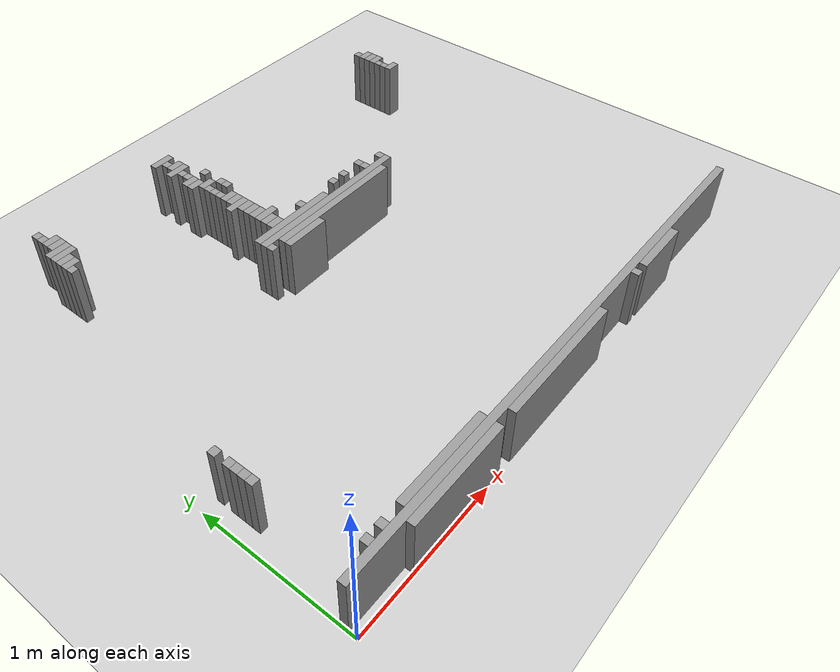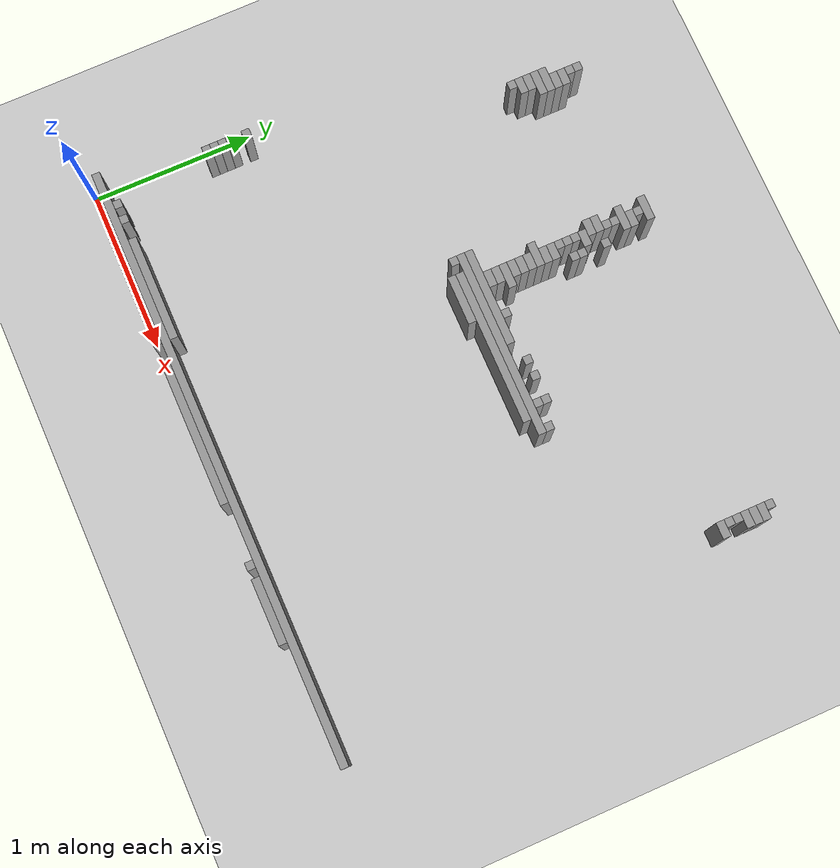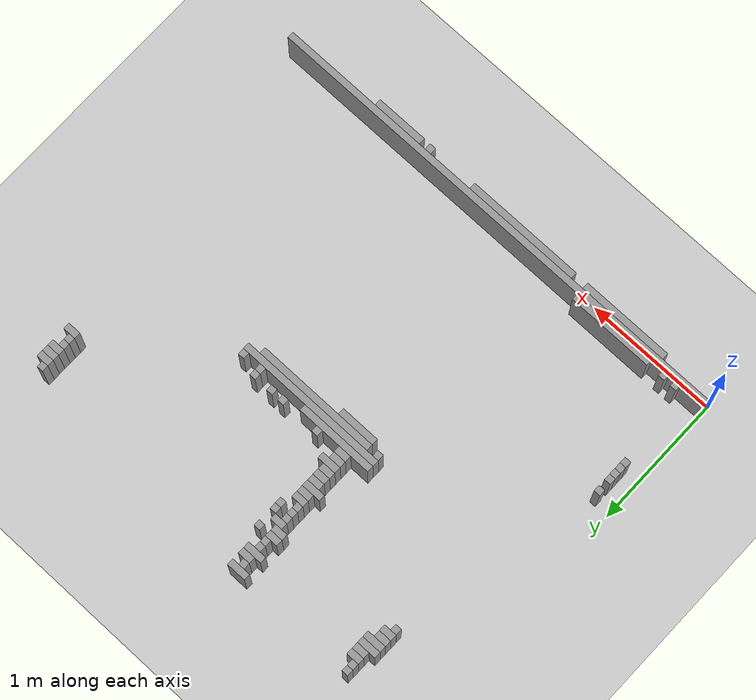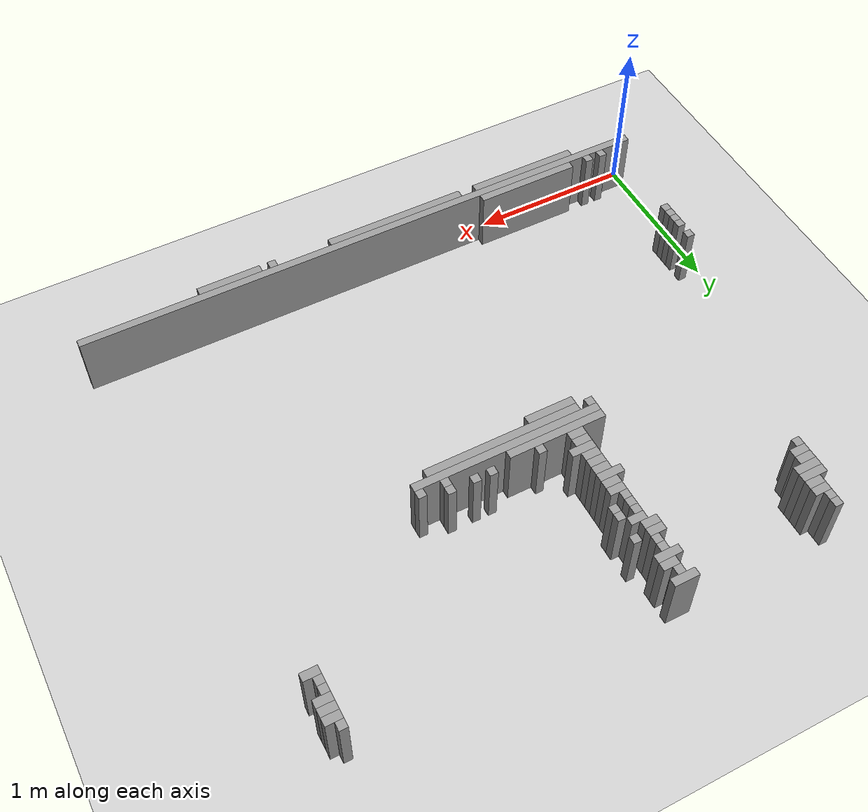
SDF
<sdf version="1.6">
 <world name="parking_mission">
  <include><uri>model://sun</uri></include>
  <include><uri>model://ground_plane</uri></include>
  <model name="wall_196">
   <static>true</static>
   <pose>0.5250 2.9250 0.2000 0 0 0</pose>
   <link name="link">
    <collision name="collision">
     <geometry><box><size>0.0500 0.0500 0.4000</size></box></geometry>
     <surface>
      <contact><ode><kp>20000.0</kp><kd>10.0</kd><max_vel>0.5</max_vel><min_depth>0.001</min_depth></ode></contact>
      <friction><ode><mu>1.0</mu><mu2>1.0</mu2></ode></friction>
     </surface>
    </collision>
    <visual name="visual">
     <geometry><box><size>0.0500 0.0500 0.4000</size></box></geometry>
     <material>
      <script><name>Gazebo/Grey</name><uri>file://media/materials/scripts/gazebo.material</uri></script>
     </material>
    </visual>
   </link>
  </model>
  <model name="wall_197">
   <static>true</static>
   <pose>1.4750 2.9250 0.2000 0 0 0</pose>
   <link name="link">
    <collision name="collision">
     <geometry><box><size>0.1500 0.0500 0.4000</size></box></geometry>
     <surface>
      <contact><ode><kp>20000.0</kp><kd>10.0</kd><max_vel>0.5</max_vel><min_depth>0.001</min_depth></ode></contact>
      <friction><ode><mu>1.0</mu><mu2>1.0</mu2></ode></friction>
     </surface>
    </collision>
    <visual name="visual">
     <geometry><box><size>0.1500 0.0500 0.4000</size></box></geometry>
     <material>
      <script><name>Gazebo/Grey</name><uri>file://media/materials/scripts/gazebo.material</uri></script>
     </material>
    </visual>
   </link>
  </model>
  <model name="wall_200">
   <static>true</static>
   <pose>0.5250 2.8750 0.2000 0 0 0</pose>
   <link name="link">
    <collision name="collision">
     <geometry><box><size>0.0500 0.0500 0.4000</size></box></geometry>
     <surface>
      <contact><ode><kp>20000.0</kp><kd>10.0</kd><max_vel>0.5</max_vel><min_depth>0.001</min_depth></ode></contact>
      <friction><ode><mu>1.0</mu><mu2>1.0</mu2></ode></friction>
     </surface>
    </collision>
    <visual name="visual">
     <geometry><box><size>0.0500 0.0500 0.4000</size></box></geometry>
     <material>
      <script><name>Gazebo/Grey</name><uri>file://media/materials/scripts/gazebo.material</uri></script>
     </material>
    </visual>
   </link>
  </model>
  <model name="wall_201">
   <static>true</static>
   <pose>1.4750 2.8750 0.2000 0 0 0</pose>
   <link name="link">
    <collision name="collision">
     <geometry><box><size>0.0500 0.0500 0.4000</size></box></geometry>
     <surface>
      <contact><ode><kp>20000.0</kp><kd>10.0</kd><max_vel>0.5</max_vel><min_depth>0.001</min_depth></ode></contact>
      <friction><ode><mu>1.0</mu><mu2>1.0</mu2></ode></friction>
     </surface>
    </collision>
    <visual name="visual">
     <geometry><box><size>0.0500 0.0500 0.4000</size></box></geometry>
     <material>
      <script><name>Gazebo/Grey</name><uri>file://media/materials/scripts/gazebo.material</uri></script>
     </material>
    </visual>
   </link>
  </model>
  <model name="wall_205">
   <static>true</static>
   <pose>0.5500 2.8250 0.2000 0 0 0</pose>
   <link name="link">
    <collision name="collision">
     <geometry><box><size>0.1000 0.0500 0.4000</size></box></geometry>
     <surface>
      <contact><ode><kp>20000.0</kp><kd>10.0</kd><max_vel>0.5</max_vel><min_depth>0.001</min_depth></ode></contact>
      <friction><ode><mu>1.0</mu><mu2>1.0</mu2></ode></friction>
     </surface>
    </collision>
    <visual name="visual">
     <geometry><box><size>0.1000 0.0500 0.4000</size></box></geometry>
     <material>
      <script><name>Gazebo/Grey</name><uri>file://media/materials/scripts/gazebo.material</uri></script>
     </material>
    </visual>
   </link>
  </model>
  <model name="wall_206">
   <static>true</static>
   <pose>1.5000 2.8250 0.2000 0 0 0</pose>
   <link name="link">
    <collision name="collision">
     <geometry><box><size>0.1000 0.0500 0.4000</size></box></geometry>
     <surface>
      <contact><ode><kp>20000.0</kp><kd>10.0</kd><max_vel>0.5</max_vel><min_depth>0.001</min_depth></ode></contact>
      <friction><ode><mu>1.0</mu><mu2>1.0</mu2></ode></friction>
     </surface>
    </collision>
    <visual name="visual">
     <geometry><box><size>0.1000 0.0500 0.4000</size></box></geometry>
     <material>
      <script><name>Gazebo/Grey</name><uri>file://media/materials/scripts/gazebo.material</uri></script>
     </material>
    </visual>
   </link>
  </model>
  <model name="wall_207">
   <static>true</static>
   <pose>3.3250 2.8250 0.2000 0 0 0</pose>
   <link name="link">
    <collision name="collision">
     <geometry><box><size>0.0500 0.0500 0.4000</size></box></geometry>
     <surface>
      <contact><ode><kp>20000.0</kp><kd>10.0</kd><max_vel>0.5</max_vel><min_depth>0.001</min_depth></ode></contact>
      <friction><ode><mu>1.0</mu><mu2>1.0</mu2></ode></friction>
     </surface>
    </collision>
    <visual name="visual">
     <geometry><box><size>0.0500 0.0500 0.4000</size></box></geometry>
     <material>
      <script><name>Gazebo/Grey</name><uri>file://media/materials/scripts/gazebo.material</uri></script>
     </material>
    </visual>
   </link>
  </model>
  <model name="wall_211">
   <static>true</static>
   <pose>0.5500 2.7750 0.2000 0 0 0</pose>
   <link name="link">
    <collision name="collision">
     <geometry><box><size>0.1000 0.0500 0.4000</size></box></geometry>
     <surface>
      <contact><ode><kp>20000.0</kp><kd>10.0</kd><max_vel>0.5</max_vel><min_depth>0.001</min_depth></ode></contact>
      <friction><ode><mu>1.0</mu><mu2>1.0</mu2></ode></friction>
     </surface>
    </collision>
    <visual name="visual">
     <geometry><box><size>0.1000 0.0500 0.4000</size></box></geometry>
     <material>
      <script><name>Gazebo/Grey</name><uri>file://media/materials/scripts/gazebo.material</uri></script>
     </material>
    </visual>
   </link>
  </model>
  <model name="wall_212">
   <static>true</static>
   <pose>1.4750 2.7750 0.2000 0 0 0</pose>
   <link name="link">
    <collision name="collision">
     <geometry><box><size>0.1500 0.0500 0.4000</size></box></geometry>
     <surface>
      <contact><ode><kp>20000.0</kp><kd>10.0</kd><max_vel>0.5</max_vel><min_depth>0.001</min_depth></ode></contact>
      <friction><ode><mu>1.0</mu><mu2>1.0</mu2></ode></friction>
     </surface>
    </collision>
    <visual name="visual">
     <geometry><box><size>0.1500 0.0500 0.4000</size></box></geometry>
     <material>
      <script><name>Gazebo/Grey</name><uri>file://media/materials/scripts/gazebo.material</uri></script>
     </material>
    </visual>
   </link>
  </model>
  <model name="wall_213">
   <static>true</static>
   <pose>3.3500 2.7750 0.2000 0 0 0</pose>
   <link name="link">
    <collision name="collision">
     <geometry><box><size>0.1000 0.0500 0.4000</size></box></geometry>
     <surface>
      <contact><ode><kp>20000.0</kp><kd>10.0</kd><max_vel>0.5</max_vel><min_depth>0.001</min_depth></ode></contact>
      <friction><ode><mu>1.0</mu><mu2>1.0</mu2></ode></friction>
     </surface>
    </collision>
    <visual name="visual">
     <geometry><box><size>0.1000 0.0500 0.4000</size></box></geometry>
     <material>
      <script><name>Gazebo/Grey</name><uri>file://media/materials/scripts/gazebo.material</uri></script>
     </material>
    </visual>
   </link>
  </model>
  <model name="wall_216">
   <static>true</static>
   <pose>0.5250 2.7250 0.2000 0 0 0</pose>
   <link name="link">
    <collision name="collision">
     <geometry><box><size>0.1500 0.0500 0.4000</size></box></geometry>
     <surface>
      <contact><ode><kp>20000.0</kp><kd>10.0</kd><max_vel>0.5</max_vel><min_depth>0.001</min_depth></ode></contact>
      <friction><ode><mu>1.0</mu><mu2>1.0</mu2></ode></friction>
     </surface>
    </collision>
    <visual name="visual">
     <geometry><box><size>0.1500 0.0500 0.4000</size></box></geometry>
     <material>
      <script><name>Gazebo/Grey</name><uri>file://media/materials/scripts/gazebo.material</uri></script>
     </material>
    </visual>
   </link>
  </model>
  <model name="wall_217">
   <static>true</static>
   <pose>1.4750 2.7250 0.2000 0 0 0</pose>
   <link name="link">
    <collision name="collision">
     <geometry><box><size>0.0500 0.0500 0.4000</size></box></geometry>
     <surface>
      <contact><ode><kp>20000.0</kp><kd>10.0</kd><max_vel>0.5</max_vel><min_depth>0.001</min_depth></ode></contact>
      <friction><ode><mu>1.0</mu><mu2>1.0</mu2></ode></friction>
     </surface>
    </collision>
    <visual name="visual">
     <geometry><box><size>0.0500 0.0500 0.4000</size></box></geometry>
     <material>
      <script><name>Gazebo/Grey</name><uri>file://media/materials/scripts/gazebo.material</uri></script>
     </material>
    </visual>
   </link>
  </model>
  <model name="wall_218">
   <static>true</static>
   <pose>3.3500 2.7250 0.2000 0 0 0</pose>
   <link name="link">
    <collision name="collision">
     <geometry><box><size>0.1000 0.0500 0.4000</size></box></geometry>
     <surface>
      <contact><ode><kp>20000.0</kp><kd>10.0</kd><max_vel>0.5</max_vel><min_depth>0.001</min_depth></ode></contact>
      <friction><ode><mu>1.0</mu><mu2>1.0</mu2></ode></friction>
     </surface>
    </collision>
    <visual name="visual">
     <geometry><box><size>0.1000 0.0500 0.4000</size></box></geometry>
     <material>
      <script><name>Gazebo/Grey</name><uri>file://media/materials/scripts/gazebo.material</uri></script>
     </material>
    </visual>
   </link>
  </model>
  <model name="wall_221">
   <static>true</static>
   <pose>0.5250 2.6750 0.2000 0 0 0</pose>
   <link name="link">
    <collision name="collision">
     <geometry><box><size>0.1500 0.0500 0.4000</size></box></geometry>
     <surface>
      <contact><ode><kp>20000.0</kp><kd>10.0</kd><max_vel>0.5</max_vel><min_depth>0.001</min_depth></ode></contact>
      <friction><ode><mu>1.0</mu><mu2>1.0</mu2></ode></friction>
     </surface>
    </collision>
    <visual name="visual">
     <geometry><box><size>0.1500 0.0500 0.4000</size></box></geometry>
     <material>
      <script><name>Gazebo/Grey</name><uri>file://media/materials/scripts/gazebo.material</uri></script>
     </material>
    </visual>
   </link>
  </model>
  <model name="wall_222">
   <static>true</static>
   <pose>1.4750 2.6750 0.2000 0 0 0</pose>
   <link name="link">
    <collision name="collision">
     <geometry><box><size>0.0500 0.0500 0.4000</size></box></geometry>
     <surface>
      <contact><ode><kp>20000.0</kp><kd>10.0</kd><max_vel>0.5</max_vel><min_depth>0.001</min_depth></ode></contact>
      <friction><ode><mu>1.0</mu><mu2>1.0</mu2></ode></friction>
     </surface>
    </collision>
    <visual name="visual">
     <geometry><box><size>0.0500 0.0500 0.4000</size></box></geometry>
     <material>
      <script><name>Gazebo/Grey</name><uri>file://media/materials/scripts/gazebo.material</uri></script>
     </material>
    </visual>
   </link>
  </model>
  <model name="wall_223">
   <static>true</static>
   <pose>3.3500 2.6750 0.2000 0 0 0</pose>
   <link name="link">
    <collision name="collision">
     <geometry><box><size>0.1000 0.0500 0.4000</size></box></geometry>
     <surface>
      <contact><ode><kp>20000.0</kp><kd>10.0</kd><max_vel>0.5</max_vel><min_depth>0.001</min_depth></ode></contact>
      <friction><ode><mu>1.0</mu><mu2>1.0</mu2></ode></friction>
     </surface>
    </collision>
    <visual name="visual">
     <geometry><box><size>0.1000 0.0500 0.4000</size></box></geometry>
     <material>
      <script><name>Gazebo/Grey</name><uri>file://media/materials/scripts/gazebo.material</uri></script>
     </material>
    </visual>
   </link>
  </model>
  <model name="wall_226">
   <static>true</static>
   <pose>0.5000 2.6250 0.2000 0 0 0</pose>
   <link name="link">
    <collision name="collision">
     <geometry><box><size>0.1000 0.0500 0.4000</size></box></geometry>
     <surface>
      <contact><ode><kp>20000.0</kp><kd>10.0</kd><max_vel>0.5</max_vel><min_depth>0.001</min_depth></ode></contact>
      <friction><ode><mu>1.0</mu><mu2>1.0</mu2></ode></friction>
     </surface>
    </collision>
    <visual name="visual">
     <geometry><box><size>0.1000 0.0500 0.4000</size></box></geometry>
     <material>
      <script><name>Gazebo/Grey</name><uri>file://media/materials/scripts/gazebo.material</uri></script>
     </material>
    </visual>
   </link>
  </model>
  <model name="wall_227">
   <static>true</static>
   <pose>1.4500 2.6250 0.2000 0 0 0</pose>
   <link name="link">
    <collision name="collision">
     <geometry><box><size>0.1000 0.0500 0.4000</size></box></geometry>
     <surface>
      <contact><ode><kp>20000.0</kp><kd>10.0</kd><max_vel>0.5</max_vel><min_depth>0.001</min_depth></ode></contact>
      <friction><ode><mu>1.0</mu><mu2>1.0</mu2></ode></friction>
     </surface>
    </collision>
    <visual name="visual">
     <geometry><box><size>0.1000 0.0500 0.4000</size></box></geometry>
     <material>
      <script><name>Gazebo/Grey</name><uri>file://media/materials/scripts/gazebo.material</uri></script>
     </material>
    </visual>
   </link>
  </model>
  <model name="wall_228">
   <static>true</static>
   <pose>1.5750 2.6250 0.2000 0 0 0</pose>
   <link name="link">
    <collision name="collision">
     <geometry><box><size>0.0500 0.0500 0.4000</size></box></geometry>
     <surface>
      <contact><ode><kp>20000.0</kp><kd>10.0</kd><max_vel>0.5</max_vel><min_depth>0.001</min_depth></ode></contact>
      <friction><ode><mu>1.0</mu><mu2>1.0</mu2></ode></friction>
     </surface>
    </collision>
    <visual name="visual">
     <geometry><box><size>0.0500 0.0500 0.4000</size></box></geometry>
     <material>
      <script><name>Gazebo/Grey</name><uri>file://media/materials/scripts/gazebo.material</uri></script>
     </material>
    </visual>
   </link>
  </model>
  <model name="wall_229">
   <static>true</static>
   <pose>3.3250 2.6250 0.2000 0 0 0</pose>
   <link name="link">
    <collision name="collision">
     <geometry><box><size>0.0500 0.0500 0.4000</size></box></geometry>
     <surface>
      <contact><ode><kp>20000.0</kp><kd>10.0</kd><max_vel>0.5</max_vel><min_depth>0.001</min_depth></ode></contact>
      <friction><ode><mu>1.0</mu><mu2>1.0</mu2></ode></friction>
     </surface>
    </collision>
    <visual name="visual">
     <geometry><box><size>0.0500 0.0500 0.4000</size></box></geometry>
     <material>
      <script><name>Gazebo/Grey</name><uri>file://media/materials/scripts/gazebo.material</uri></script>
     </material>
    </visual>
   </link>
  </model>
  <model name="wall_232">
   <static>true</static>
   <pose>0.5000 2.5750 0.2000 0 0 0</pose>
   <link name="link">
    <collision name="collision">
     <geometry><box><size>0.1000 0.0500 0.4000</size></box></geometry>
     <surface>
      <contact><ode><kp>20000.0</kp><kd>10.0</kd><max_vel>0.5</max_vel><min_depth>0.001</min_depth></ode></contact>
      <friction><ode><mu>1.0</mu><mu2>1.0</mu2></ode></friction>
     </surface>
    </collision>
    <visual name="visual">
     <geometry><box><size>0.1000 0.0500 0.4000</size></box></geometry>
     <material>
      <script><name>Gazebo/Grey</name><uri>file://media/materials/scripts/gazebo.material</uri></script>
     </material>
    </visual>
   </link>
  </model>
  <model name="wall_233">
   <static>true</static>
   <pose>1.4500 2.5750 0.2000 0 0 0</pose>
   <link name="link">
    <collision name="collision">
     <geometry><box><size>0.1000 0.0500 0.4000</size></box></geometry>
     <surface>
      <contact><ode><kp>20000.0</kp><kd>10.0</kd><max_vel>0.5</max_vel><min_depth>0.001</min_depth></ode></contact>
      <friction><ode><mu>1.0</mu><mu2>1.0</mu2></ode></friction>
     </surface>
    </collision>
    <visual name="visual">
     <geometry><box><size>0.1000 0.0500 0.4000</size></box></geometry>
     <material>
      <script><name>Gazebo/Grey</name><uri>file://media/materials/scripts/gazebo.material</uri></script>
     </material>
    </visual>
   </link>
  </model>
  <model name="wall_234">
   <static>true</static>
   <pose>3.3250 2.5750 0.2000 0 0 0</pose>
   <link name="link">
    <collision name="collision">
     <geometry><box><size>0.0500 0.0500 0.4000</size></box></geometry>
     <surface>
      <contact><ode><kp>20000.0</kp><kd>10.0</kd><max_vel>0.5</max_vel><min_depth>0.001</min_depth></ode></contact>
      <friction><ode><mu>1.0</mu><mu2>1.0</mu2></ode></friction>
     </surface>
    </collision>
    <visual name="visual">
     <geometry><box><size>0.0500 0.0500 0.4000</size></box></geometry>
     <material>
      <script><name>Gazebo/Grey</name><uri>file://media/materials/scripts/gazebo.material</uri></script>
     </material>
    </visual>
   </link>
  </model>
  <model name="wall_237">
   <static>true</static>
   <pose>0.4750 2.5250 0.2000 0 0 0</pose>
   <link name="link">
    <collision name="collision">
     <geometry><box><size>0.0500 0.0500 0.4000</size></box></geometry>
     <surface>
      <contact><ode><kp>20000.0</kp><kd>10.0</kd><max_vel>0.5</max_vel><min_depth>0.001</min_depth></ode></contact>
      <friction><ode><mu>1.0</mu><mu2>1.0</mu2></ode></friction>
     </surface>
    </collision>
    <visual name="visual">
     <geometry><box><size>0.0500 0.0500 0.4000</size></box></geometry>
     <material>
      <script><name>Gazebo/Grey</name><uri>file://media/materials/scripts/gazebo.material</uri></script>
     </material>
    </visual>
   </link>
  </model>
  <model name="wall_238">
   <static>true</static>
   <pose>1.5000 2.5250 0.2000 0 0 0</pose>
   <link name="link">
    <collision name="collision">
     <geometry><box><size>0.1000 0.0500 0.4000</size></box></geometry>
     <surface>
      <contact><ode><kp>20000.0</kp><kd>10.0</kd><max_vel>0.5</max_vel><min_depth>0.001</min_depth></ode></contact>
      <friction><ode><mu>1.0</mu><mu2>1.0</mu2></ode></friction>
     </surface>
    </collision>
    <visual name="visual">
     <geometry><box><size>0.1000 0.0500 0.4000</size></box></geometry>
     <material>
      <script><name>Gazebo/Grey</name><uri>file://media/materials/scripts/gazebo.material</uri></script>
     </material>
    </visual>
   </link>
  </model>
  <model name="wall_239">
   <static>true</static>
   <pose>3.3500 2.5250 0.2000 0 0 0</pose>
   <link name="link">
    <collision name="collision">
     <geometry><box><size>0.1000 0.0500 0.4000</size></box></geometry>
     <surface>
      <contact><ode><kp>20000.0</kp><kd>10.0</kd><max_vel>0.5</max_vel><min_depth>0.001</min_depth></ode></contact>
      <friction><ode><mu>1.0</mu><mu2>1.0</mu2></ode></friction>
     </surface>
    </collision>
    <visual name="visual">
     <geometry><box><size>0.1000 0.0500 0.4000</size></box></geometry>
     <material>
      <script><name>Gazebo/Grey</name><uri>file://media/materials/scripts/gazebo.material</uri></script>
     </material>
    </visual>
   </link>
  </model>
  <model name="wall_242">
   <static>true</static>
   <pose>1.4750 2.4750 0.2000 0 0 0</pose>
   <link name="link">
    <collision name="collision">
     <geometry><box><size>0.0500 0.0500 0.4000</size></box></geometry>
     <surface>
      <contact><ode><kp>20000.0</kp><kd>10.0</kd><max_vel>0.5</max_vel><min_depth>0.001</min_depth></ode></contact>
      <friction><ode><mu>1.0</mu><mu2>1.0</mu2></ode></friction>
     </surface>
    </collision>
    <visual name="visual">
     <geometry><box><size>0.0500 0.0500 0.4000</size></box></geometry>
     <material>
      <script><name>Gazebo/Grey</name><uri>file://media/materials/scripts/gazebo.material</uri></script>
     </material>
    </visual>
   </link>
  </model>
  <model name="wall_243">
   <static>true</static>
   <pose>1.5750 2.4750 0.2000 0 0 0</pose>
   <link name="link">
    <collision name="collision">
     <geometry><box><size>0.0500 0.0500 0.4000</size></box></geometry>
     <surface>
      <contact><ode><kp>20000.0</kp><kd>10.0</kd><max_vel>0.5</max_vel><min_depth>0.001</min_depth></ode></contact>
      <friction><ode><mu>1.0</mu><mu2>1.0</mu2></ode></friction>
     </surface>
    </collision>
    <visual name="visual">
     <geometry><box><size>0.0500 0.0500 0.4000</size></box></geometry>
     <material>
      <script><name>Gazebo/Grey</name><uri>file://media/materials/scripts/gazebo.material</uri></script>
     </material>
    </visual>
   </link>
  </model>
  <model name="wall_246">
   <static>true</static>
   <pose>1.4750 2.4250 0.2000 0 0 0</pose>
   <link name="link">
    <collision name="collision">
     <geometry><box><size>0.0500 0.0500 0.4000</size></box></geometry>
     <surface>
      <contact><ode><kp>20000.0</kp><kd>10.0</kd><max_vel>0.5</max_vel><min_depth>0.001</min_depth></ode></contact>
      <friction><ode><mu>1.0</mu><mu2>1.0</mu2></ode></friction>
     </surface>
    </collision>
    <visual name="visual">
     <geometry><box><size>0.0500 0.0500 0.4000</size></box></geometry>
     <material>
      <script><name>Gazebo/Grey</name><uri>file://media/materials/scripts/gazebo.material</uri></script>
     </material>
    </visual>
   </link>
  </model>
  <model name="wall_247">
   <static>true</static>
   <pose>1.5750 2.4250 0.2000 0 0 0</pose>
   <link name="link">
    <collision name="collision">
     <geometry><box><size>0.0500 0.0500 0.4000</size></box></geometry>
     <surface>
      <contact><ode><kp>20000.0</kp><kd>10.0</kd><max_vel>0.5</max_vel><min_depth>0.001</min_depth></ode></contact>
      <friction><ode><mu>1.0</mu><mu2>1.0</mu2></ode></friction>
     </surface>
    </collision>
    <visual name="visual">
     <geometry><box><size>0.0500 0.0500 0.4000</size></box></geometry>
     <material>
      <script><name>Gazebo/Grey</name><uri>file://media/materials/scripts/gazebo.material</uri></script>
     </material>
    </visual>
   </link>
  </model>
  <model name="wall_250">
   <static>true</static>
   <pose>1.4750 2.3750 0.2000 0 0 0</pose>
   <link name="link">
    <collision name="collision">
     <geometry><box><size>0.0500 0.0500 0.4000</size></box></geometry>
     <surface>
      <contact><ode><kp>20000.0</kp><kd>10.0</kd><max_vel>0.5</max_vel><min_depth>0.001</min_depth></ode></contact>
      <friction><ode><mu>1.0</mu><mu2>1.0</mu2></ode></friction>
     </surface>
    </collision>
    <visual name="visual">
     <geometry><box><size>0.0500 0.0500 0.4000</size></box></geometry>
     <material>
      <script><name>Gazebo/Grey</name><uri>file://media/materials/scripts/gazebo.material</uri></script>
     </material>
    </visual>
   </link>
  </model>
  <model name="wall_253">
   <static>true</static>
   <pose>1.5000 2.3250 0.2000 0 0 0</pose>
   <link name="link">
    <collision name="collision">
     <geometry><box><size>0.1000 0.0500 0.4000</size></box></geometry>
     <surface>
      <contact><ode><kp>20000.0</kp><kd>10.0</kd><max_vel>0.5</max_vel><min_depth>0.001</min_depth></ode></contact>
      <friction><ode><mu>1.0</mu><mu2>1.0</mu2></ode></friction>
     </surface>
    </collision>
    <visual name="visual">
     <geometry><box><size>0.1000 0.0500 0.4000</size></box></geometry>
     <material>
      <script><name>Gazebo/Grey</name><uri>file://media/materials/scripts/gazebo.material</uri></script>
     </material>
    </visual>
   </link>
  </model>
  <model name="wall_256">
   <static>true</static>
   <pose>1.5000 2.2750 0.2000 0 0 0</pose>
   <link name="link">
    <collision name="collision">
     <geometry><box><size>0.1000 0.0500 0.4000</size></box></geometry>
     <surface>
      <contact><ode><kp>20000.0</kp><kd>10.0</kd><max_vel>0.5</max_vel><min_depth>0.001</min_depth></ode></contact>
      <friction><ode><mu>1.0</mu><mu2>1.0</mu2></ode></friction>
     </surface>
    </collision>
    <visual name="visual">
     <geometry><box><size>0.1000 0.0500 0.4000</size></box></geometry>
     <material>
      <script><name>Gazebo/Grey</name><uri>file://media/materials/scripts/gazebo.material</uri></script>
     </material>
    </visual>
   </link>
  </model>
  <model name="wall_259">
   <static>true</static>
   <pose>1.4750 2.2250 0.2000 0 0 0</pose>
   <link name="link">
    <collision name="collision">
     <geometry><box><size>0.1500 0.0500 0.4000</size></box></geometry>
     <surface>
      <contact><ode><kp>20000.0</kp><kd>10.0</kd><max_vel>0.5</max_vel><min_depth>0.001</min_depth></ode></contact>
      <friction><ode><mu>1.0</mu><mu2>1.0</mu2></ode></friction>
     </surface>
    </collision>
    <visual name="visual">
     <geometry><box><size>0.1500 0.0500 0.4000</size></box></geometry>
     <material>
      <script><name>Gazebo/Grey</name><uri>file://media/materials/scripts/gazebo.material</uri></script>
     </material>
    </visual>
   </link>
  </model>
  <model name="wall_263">
   <static>true</static>
   <pose>1.5000 2.1750 0.2000 0 0 0</pose>
   <link name="link">
    <collision name="collision">
     <geometry><box><size>0.1000 0.0500 0.4000</size></box></geometry>
     <surface>
      <contact><ode><kp>20000.0</kp><kd>10.0</kd><max_vel>0.5</max_vel><min_depth>0.001</min_depth></ode></contact>
      <friction><ode><mu>1.0</mu><mu2>1.0</mu2></ode></friction>
     </surface>
    </collision>
    <visual name="visual">
     <geometry><box><size>0.1000 0.0500 0.4000</size></box></geometry>
     <material>
      <script><name>Gazebo/Grey</name><uri>file://media/materials/scripts/gazebo.material</uri></script>
     </material>
    </visual>
   </link>
  </model>
  <model name="wall_266">
   <static>true</static>
   <pose>1.5000 2.1250 0.2000 0 0 0</pose>
   <link name="link">
    <collision name="collision">
     <geometry><box><size>0.1000 0.0500 0.4000</size></box></geometry>
     <surface>
      <contact><ode><kp>20000.0</kp><kd>10.0</kd><max_vel>0.5</max_vel><min_depth>0.001</min_depth></ode></contact>
      <friction><ode><mu>1.0</mu><mu2>1.0</mu2></ode></friction>
     </surface>
    </collision>
    <visual name="visual">
     <geometry><box><size>0.1000 0.0500 0.4000</size></box></geometry>
     <material>
      <script><name>Gazebo/Grey</name><uri>file://media/materials/scripts/gazebo.material</uri></script>
     </material>
    </visual>
   </link>
  </model>
  <model name="wall_269">
   <static>true</static>
   <pose>1.5000 2.0750 0.2000 0 0 0</pose>
   <link name="link">
    <collision name="collision">
     <geometry><box><size>0.1000 0.0500 0.4000</size></box></geometry>
     <surface>
      <contact><ode><kp>20000.0</kp><kd>10.0</kd><max_vel>0.5</max_vel><min_depth>0.001</min_depth></ode></contact>
      <friction><ode><mu>1.0</mu><mu2>1.0</mu2></ode></friction>
     </surface>
    </collision>
    <visual name="visual">
     <geometry><box><size>0.1000 0.0500 0.4000</size></box></geometry>
     <material>
      <script><name>Gazebo/Grey</name><uri>file://media/materials/scripts/gazebo.material</uri></script>
     </material>
    </visual>
   </link>
  </model>
  <model name="wall_272">
   <static>true</static>
   <pose>1.5250 2.0250 0.2000 0 0 0</pose>
   <link name="link">
    <collision name="collision">
     <geometry><box><size>0.1500 0.0500 0.4000</size></box></geometry>
     <surface>
      <contact><ode><kp>20000.0</kp><kd>10.0</kd><max_vel>0.5</max_vel><min_depth>0.001</min_depth></ode></contact>
      <friction><ode><mu>1.0</mu><mu2>1.0</mu2></ode></friction>
     </surface>
    </collision>
    <visual name="visual">
     <geometry><box><size>0.1500 0.0500 0.4000</size></box></geometry>
     <material>
      <script><name>Gazebo/Grey</name><uri>file://media/materials/scripts/gazebo.material</uri></script>
     </material>
    </visual>
   </link>
  </model>
  <model name="wall_275">
   <static>true</static>
   <pose>1.5000 1.9750 0.2000 0 0 0</pose>
   <link name="link">
    <collision name="collision">
     <geometry><box><size>0.1000 0.0500 0.4000</size></box></geometry>
     <surface>
      <contact><ode><kp>20000.0</kp><kd>10.0</kd><max_vel>0.5</max_vel><min_depth>0.001</min_depth></ode></contact>
      <friction><ode><mu>1.0</mu><mu2>1.0</mu2></ode></friction>
     </surface>
    </collision>
    <visual name="visual">
     <geometry><box><size>0.1000 0.0500 0.4000</size></box></geometry>
     <material>
      <script><name>Gazebo/Grey</name><uri>file://media/materials/scripts/gazebo.material</uri></script>
     </material>
    </visual>
   </link>
  </model>
  <model name="wall_279">
   <static>true</static>
   <pose>1.5000 1.9250 0.2000 0 0 0</pose>
   <link name="link">
    <collision name="collision">
     <geometry><box><size>0.1000 0.0500 0.4000</size></box></geometry>
     <surface>
      <contact><ode><kp>20000.0</kp><kd>10.0</kd><max_vel>0.5</max_vel><min_depth>0.001</min_depth></ode></contact>
      <friction><ode><mu>1.0</mu><mu2>1.0</mu2></ode></friction>
     </surface>
    </collision>
    <visual name="visual">
     <geometry><box><size>0.1000 0.0500 0.4000</size></box></geometry>
     <material>
      <script><name>Gazebo/Grey</name><uri>file://media/materials/scripts/gazebo.material</uri></script>
     </material>
    </visual>
   </link>
  </model>
  <model name="wall_280">
   <static>true</static>
   <pose>1.7250 1.9250 0.2000 0 0 0</pose>
   <link name="link">
    <collision name="collision">
     <geometry><box><size>0.0500 0.0500 0.4000</size></box></geometry>
     <surface>
      <contact><ode><kp>20000.0</kp><kd>10.0</kd><max_vel>0.5</max_vel><min_depth>0.001</min_depth></ode></contact>
      <friction><ode><mu>1.0</mu><mu2>1.0</mu2></ode></friction>
     </surface>
    </collision>
    <visual name="visual">
     <geometry><box><size>0.0500 0.0500 0.4000</size></box></geometry>
     <material>
      <script><name>Gazebo/Grey</name><uri>file://media/materials/scripts/gazebo.material</uri></script>
     </material>
    </visual>
   </link>
  </model>
  <model name="wall_281">
   <static>true</static>
   <pose>2.0250 1.9250 0.2000 0 0 0</pose>
   <link name="link">
    <collision name="collision">
     <geometry><box><size>0.0500 0.0500 0.4000</size></box></geometry>
     <surface>
      <contact><ode><kp>20000.0</kp><kd>10.0</kd><max_vel>0.5</max_vel><min_depth>0.001</min_depth></ode></contact>
      <friction><ode><mu>1.0</mu><mu2>1.0</mu2></ode></friction>
     </surface>
    </collision>
    <visual name="visual">
     <geometry><box><size>0.0500 0.0500 0.4000</size></box></geometry>
     <material>
      <script><name>Gazebo/Grey</name><uri>file://media/materials/scripts/gazebo.material</uri></script>
     </material>
    </visual>
   </link>
  </model>
  <model name="wall_282">
   <static>true</static>
   <pose>2.1250 1.9250 0.2000 0 0 0</pose>
   <link name="link">
    <collision name="collision">
     <geometry><box><size>0.0500 0.0500 0.4000</size></box></geometry>
     <surface>
      <contact><ode><kp>20000.0</kp><kd>10.0</kd><max_vel>0.5</max_vel><min_depth>0.001</min_depth></ode></contact>
      <friction><ode><mu>1.0</mu><mu2>1.0</mu2></ode></friction>
     </surface>
    </collision>
    <visual name="visual">
     <geometry><box><size>0.0500 0.0500 0.4000</size></box></geometry>
     <material>
      <script><name>Gazebo/Grey</name><uri>file://media/materials/scripts/gazebo.material</uri></script>
     </material>
    </visual>
   </link>
  </model>
  <model name="wall_283">
   <static>true</static>
   <pose>2.2750 1.9250 0.2000 0 0 0</pose>
   <link name="link">
    <collision name="collision">
     <geometry><box><size>0.0500 0.0500 0.4000</size></box></geometry>
     <surface>
      <contact><ode><kp>20000.0</kp><kd>10.0</kd><max_vel>0.5</max_vel><min_depth>0.001</min_depth></ode></contact>
      <friction><ode><mu>1.0</mu><mu2>1.0</mu2></ode></friction>
     </surface>
    </collision>
    <visual name="visual">
     <geometry><box><size>0.0500 0.0500 0.4000</size></box></geometry>
     <material>
      <script><name>Gazebo/Grey</name><uri>file://media/materials/scripts/gazebo.material</uri></script>
     </material>
    </visual>
   </link>
  </model>
  <model name="wall_286">
   <static>true</static>
   <pose>1.6000 1.8750 0.2000 0 0 0</pose>
   <link name="link">
    <collision name="collision">
     <geometry><box><size>0.6000 0.0500 0.4000</size></box></geometry>
     <surface>
      <contact><ode><kp>20000.0</kp><kd>10.0</kd><max_vel>0.5</max_vel><min_depth>0.001</min_depth></ode></contact>
      <friction><ode><mu>1.0</mu><mu2>1.0</mu2></ode></friction>
     </surface>
    </collision>
    <visual name="visual">
     <geometry><box><size>0.6000 0.0500 0.4000</size></box></geometry>
     <material>
      <script><name>Gazebo/Grey</name><uri>file://media/materials/scripts/gazebo.material</uri></script>
     </material>
    </visual>
   </link>
  </model>
  <model name="wall_287">
   <static>true</static>
   <pose>2.2750 1.8750 0.2000 0 0 0</pose>
   <link name="link">
    <collision name="collision">
     <geometry><box><size>0.0500 0.0500 0.4000</size></box></geometry>
     <surface>
      <contact><ode><kp>20000.0</kp><kd>10.0</kd><max_vel>0.5</max_vel><min_depth>0.001</min_depth></ode></contact>
      <friction><ode><mu>1.0</mu><mu2>1.0</mu2></ode></friction>
     </surface>
    </collision>
    <visual name="visual">
     <geometry><box><size>0.0500 0.0500 0.4000</size></box></geometry>
     <material>
      <script><name>Gazebo/Grey</name><uri>file://media/materials/scripts/gazebo.material</uri></script>
     </material>
    </visual>
   </link>
  </model>
  <model name="wall_288">
   <static>true</static>
   <pose>2.4250 1.8750 0.2000 0 0 0</pose>
   <link name="link">
    <collision name="collision">
     <geometry><box><size>0.0500 0.0500 0.4000</size></box></geometry>
     <surface>
      <contact><ode><kp>20000.0</kp><kd>10.0</kd><max_vel>0.5</max_vel><min_depth>0.001</min_depth></ode></contact>
      <friction><ode><mu>1.0</mu><mu2>1.0</mu2></ode></friction>
     </surface>
    </collision>
    <visual name="visual">
     <geometry><box><size>0.0500 0.0500 0.4000</size></box></geometry>
     <material>
      <script><name>Gazebo/Grey</name><uri>file://media/materials/scripts/gazebo.material</uri></script>
     </material>
    </visual>
   </link>
  </model>
  <model name="wall_292">
   <static>true</static>
   <pose>1.8750 1.8250 0.2000 0 0 0</pose>
   <link name="link">
    <collision name="collision">
     <geometry><box><size>1.1500 0.0500 0.4000</size></box></geometry>
     <surface>
      <contact><ode><kp>20000.0</kp><kd>10.0</kd><max_vel>0.5</max_vel><min_depth>0.001</min_depth></ode></contact>
      <friction><ode><mu>1.0</mu><mu2>1.0</mu2></ode></friction>
     </surface>
    </collision>
    <visual name="visual">
     <geometry><box><size>1.1500 0.0500 0.4000</size></box></geometry>
     <material>
      <script><name>Gazebo/Grey</name><uri>file://media/materials/scripts/gazebo.material</uri></script>
     </material>
    </visual>
   </link>
  </model>
  <model name="wall_295">
   <static>true</static>
   <pose>1.3250 1.7750 0.2000 0 0 0</pose>
   <link name="link">
    <collision name="collision">
     <geometry><box><size>0.0500 0.0500 0.4000</size></box></geometry>
     <surface>
      <contact><ode><kp>20000.0</kp><kd>10.0</kd><max_vel>0.5</max_vel><min_depth>0.001</min_depth></ode></contact>
      <friction><ode><mu>1.0</mu><mu2>1.0</mu2></ode></friction>
     </surface>
    </collision>
    <visual name="visual">
     <geometry><box><size>0.0500 0.0500 0.4000</size></box></geometry>
     <material>
      <script><name>Gazebo/Grey</name><uri>file://media/materials/scripts/gazebo.material</uri></script>
     </material>
    </visual>
   </link>
  </model>
  <model name="wall_296">
   <static>true</static>
   <pose>1.8750 1.7750 0.2000 0 0 0</pose>
   <link name="link">
    <collision name="collision">
     <geometry><box><size>0.9500 0.0500 0.4000</size></box></geometry>
     <surface>
      <contact><ode><kp>20000.0</kp><kd>10.0</kd><max_vel>0.5</max_vel><min_depth>0.001</min_depth></ode></contact>
      <friction><ode><mu>1.0</mu><mu2>1.0</mu2></ode></friction>
     </surface>
    </collision>
    <visual name="visual">
     <geometry><box><size>0.9500 0.0500 0.4000</size></box></geometry>
     <material>
      <script><name>Gazebo/Grey</name><uri>file://media/materials/scripts/gazebo.material</uri></script>
     </material>
    </visual>
   </link>
  </model>
  <model name="wall_299">
   <static>true</static>
   <pose>1.5500 1.7250 0.2000 0 0 0</pose>
   <link name="link">
    <collision name="collision">
     <geometry><box><size>0.3000 0.0500 0.4000</size></box></geometry>
     <surface>
      <contact><ode><kp>20000.0</kp><kd>10.0</kd><max_vel>0.5</max_vel><min_depth>0.001</min_depth></ode></contact>
      <friction><ode><mu>1.0</mu><mu2>1.0</mu2></ode></friction>
     </surface>
    </collision>
    <visual name="visual">
     <geometry><box><size>0.3000 0.0500 0.4000</size></box></geometry>
     <material>
      <script><name>Gazebo/Grey</name><uri>file://media/materials/scripts/gazebo.material</uri></script>
     </material>
    </visual>
   </link>
  </model>
  <model name="wall_336">
   <static>true</static>
   <pose>0.1250 0.9750 0.2000 0 0 0</pose>
   <link name="link">
    <collision name="collision">
     <geometry><box><size>0.0500 0.0500 0.4000</size></box></geometry>
     <surface>
      <contact><ode><kp>20000.0</kp><kd>10.0</kd><max_vel>0.5</max_vel><min_depth>0.001</min_depth></ode></contact>
      <friction><ode><mu>1.0</mu><mu2>1.0</mu2></ode></friction>
     </surface>
    </collision>
    <visual name="visual">
     <geometry><box><size>0.0500 0.0500 0.4000</size></box></geometry>
     <material>
      <script><name>Gazebo/Grey</name><uri>file://media/materials/scripts/gazebo.material</uri></script>
     </material>
    </visual>
   </link>
  </model>
  <model name="wall_342">
   <static>true</static>
   <pose>0.1250 0.8750 0.2000 0 0 0</pose>
   <link name="link">
    <collision name="collision">
     <geometry><box><size>0.0500 0.0500 0.4000</size></box></geometry>
     <surface>
      <contact><ode><kp>20000.0</kp><kd>10.0</kd><max_vel>0.5</max_vel><min_depth>0.001</min_depth></ode></contact>
      <friction><ode><mu>1.0</mu><mu2>1.0</mu2></ode></friction>
     </surface>
    </collision>
    <visual name="visual">
     <geometry><box><size>0.0500 0.0500 0.4000</size></box></geometry>
     <material>
      <script><name>Gazebo/Grey</name><uri>file://media/materials/scripts/gazebo.material</uri></script>
     </material>
    </visual>
   </link>
  </model>
  <model name="wall_344">
   <static>true</static>
   <pose>0.1250 0.8250 0.2000 0 0 0</pose>
   <link name="link">
    <collision name="collision">
     <geometry><box><size>0.0500 0.0500 0.4000</size></box></geometry>
     <surface>
      <contact><ode><kp>20000.0</kp><kd>10.0</kd><max_vel>0.5</max_vel><min_depth>0.001</min_depth></ode></contact>
      <friction><ode><mu>1.0</mu><mu2>1.0</mu2></ode></friction>
     </surface>
    </collision>
    <visual name="visual">
     <geometry><box><size>0.0500 0.0500 0.4000</size></box></geometry>
     <material>
      <script><name>Gazebo/Grey</name><uri>file://media/materials/scripts/gazebo.material</uri></script>
     </material>
    </visual>
   </link>
  </model>
  <model name="wall_347">
   <static>true</static>
   <pose>0.1250 0.7750 0.2000 0 0 0</pose>
   <link name="link">
    <collision name="collision">
     <geometry><box><size>0.0500 0.0500 0.4000</size></box></geometry>
     <surface>
      <contact><ode><kp>20000.0</kp><kd>10.0</kd><max_vel>0.5</max_vel><min_depth>0.001</min_depth></ode></contact>
      <friction><ode><mu>1.0</mu><mu2>1.0</mu2></ode></friction>
     </surface>
    </collision>
    <visual name="visual">
     <geometry><box><size>0.0500 0.0500 0.4000</size></box></geometry>
     <material>
      <script><name>Gazebo/Grey</name><uri>file://media/materials/scripts/gazebo.material</uri></script>
     </material>
    </visual>
   </link>
  </model>
  <model name="wall_350">
   <static>true</static>
   <pose>0.1250 0.7250 0.2000 0 0 0</pose>
   <link name="link">
    <collision name="collision">
     <geometry><box><size>0.0500 0.0500 0.4000</size></box></geometry>
     <surface>
      <contact><ode><kp>20000.0</kp><kd>10.0</kd><max_vel>0.5</max_vel><min_depth>0.001</min_depth></ode></contact>
      <friction><ode><mu>1.0</mu><mu2>1.0</mu2></ode></friction>
     </surface>
    </collision>
    <visual name="visual">
     <geometry><box><size>0.0500 0.0500 0.4000</size></box></geometry>
     <material>
      <script><name>Gazebo/Grey</name><uri>file://media/materials/scripts/gazebo.material</uri></script>
     </material>
    </visual>
   </link>
  </model>
  <model name="wall_376">
   <static>true</static>
   <pose>0.2250 0.1250 0.2000 0 0 0</pose>
   <link name="link">
    <collision name="collision">
     <geometry><box><size>0.0500 0.0500 0.4000</size></box></geometry>
     <surface>
      <contact><ode><kp>20000.0</kp><kd>10.0</kd><max_vel>0.5</max_vel><min_depth>0.001</min_depth></ode></contact>
      <friction><ode><mu>1.0</mu><mu2>1.0</mu2></ode></friction>
     </surface>
    </collision>
    <visual name="visual">
     <geometry><box><size>0.0500 0.0500 0.4000</size></box></geometry>
     <material>
      <script><name>Gazebo/Grey</name><uri>file://media/materials/scripts/gazebo.material</uri></script>
     </material>
    </visual>
   </link>
  </model>
  <model name="wall_377">
   <static>true</static>
   <pose>0.3250 0.1250 0.2000 0 0 0</pose>
   <link name="link">
    <collision name="collision">
     <geometry><box><size>0.0500 0.0500 0.4000</size></box></geometry>
     <surface>
      <contact><ode><kp>20000.0</kp><kd>10.0</kd><max_vel>0.5</max_vel><min_depth>0.001</min_depth></ode></contact>
      <friction><ode><mu>1.0</mu><mu2>1.0</mu2></ode></friction>
     </surface>
    </collision>
    <visual name="visual">
     <geometry><box><size>0.0500 0.0500 0.4000</size></box></geometry>
     <material>
      <script><name>Gazebo/Grey</name><uri>file://media/materials/scripts/gazebo.material</uri></script>
     </material>
    </visual>
   </link>
  </model>
  <model name="wall_378">
   <static>true</static>
   <pose>0.7750 0.1250 0.2000 0 0 0</pose>
   <link name="link">
    <collision name="collision">
     <geometry><box><size>0.6500 0.0500 0.4000</size></box></geometry>
     <surface>
      <contact><ode><kp>20000.0</kp><kd>10.0</kd><max_vel>0.5</max_vel><min_depth>0.001</min_depth></ode></contact>
      <friction><ode><mu>1.0</mu><mu2>1.0</mu2></ode></friction>
     </surface>
    </collision>
    <visual name="visual">
     <geometry><box><size>0.6500 0.0500 0.4000</size></box></geometry>
     <material>
      <script><name>Gazebo/Grey</name><uri>file://media/materials/scripts/gazebo.material</uri></script>
     </material>
    </visual>
   </link>
  </model>
  <model name="wall_380">
   <static>true</static>
   <pose>1.8500 0.0750 0.2000 0 0 0</pose>
   <link name="link">
    <collision name="collision">
     <geometry><box><size>3.7000 0.0500 0.4000</size></box></geometry>
     <surface>
      <contact><ode><kp>20000.0</kp><kd>10.0</kd><max_vel>0.5</max_vel><min_depth>0.001</min_depth></ode></contact>
      <friction><ode><mu>1.0</mu><mu2>1.0</mu2></ode></friction>
     </surface>
    </collision>
    <visual name="visual">
     <geometry><box><size>3.7000 0.0500 0.4000</size></box></geometry>
     <material>
      <script><name>Gazebo/Grey</name><uri>file://media/materials/scripts/gazebo.material</uri></script>
     </material>
    </visual>
   </link>
  </model>
  <model name="wall_382">
   <static>true</static>
   <pose>0.7500 0.0250 0.2000 0 0 0</pose>
   <link name="link">
    <collision name="collision">
     <geometry><box><size>0.7000 0.0500 0.4000</size></box></geometry>
     <surface>
      <contact><ode><kp>20000.0</kp><kd>10.0</kd><max_vel>0.5</max_vel><min_depth>0.001</min_depth></ode></contact>
      <friction><ode><mu>1.0</mu><mu2>1.0</mu2></ode></friction>
     </surface>
    </collision>
    <visual name="visual">
     <geometry><box><size>0.7000 0.0500 0.4000</size></box></geometry>
     <material>
      <script><name>Gazebo/Grey</name><uri>file://media/materials/scripts/gazebo.material</uri></script>
     </material>
    </visual>
   </link>
  </model>
  <model name="wall_383">
   <static>true</static>
   <pose>1.6500 0.0250 0.2000 0 0 0</pose>
   <link name="link">
    <collision name="collision">
     <geometry><box><size>0.9000 0.0500 0.4000</size></box></geometry>
     <surface>
      <contact><ode><kp>20000.0</kp><kd>10.0</kd><max_vel>0.5</max_vel><min_depth>0.001</min_depth></ode></contact>
      <friction><ode><mu>1.0</mu><mu2>1.0</mu2></ode></friction>
     </surface>
    </collision>
    <visual name="visual">
     <geometry><box><size>0.9000 0.0500 0.4000</size></box></geometry>
     <material>
      <script><name>Gazebo/Grey</name><uri>file://media/materials/scripts/gazebo.material</uri></script>
     </material>
    </visual>
   </link>
  </model>
  <model name="wall_384">
   <static>true</static>
   <pose>2.4750 0.0250 0.2000 0 0 0</pose>
   <link name="link">
    <collision name="collision">
     <geometry><box><size>0.0500 0.0500 0.4000</size></box></geometry>
     <surface>
      <contact><ode><kp>20000.0</kp><kd>10.0</kd><max_vel>0.5</max_vel><min_depth>0.001</min_depth></ode></contact>
      <friction><ode><mu>1.0</mu><mu2>1.0</mu2></ode></friction>
     </surface>
    </collision>
    <visual name="visual">
     <geometry><box><size>0.0500 0.0500 0.4000</size></box></geometry>
     <material>
      <script><name>Gazebo/Grey</name><uri>file://media/materials/scripts/gazebo.material</uri></script>
     </material>
    </visual>
   </link>
  </model>
  <model name="wall_385">
   <static>true</static>
   <pose>2.7500 0.0250 0.2000 0 0 0</pose>
   <link name="link">
    <collision name="collision">
     <geometry><box><size>0.4000 0.0500 0.4000</size></box></geometry>
     <surface>
      <contact><ode><kp>20000.0</kp><kd>10.0</kd><max_vel>0.5</max_vel><min_depth>0.001</min_depth></ode></contact>
      <friction><ode><mu>1.0</mu><mu2>1.0</mu2></ode></friction>
     </surface>
    </collision>
    <visual name="visual">
     <geometry><box><size>0.4000 0.0500 0.4000</size></box></geometry>
     <material>
      <script><name>Gazebo/Grey</name><uri>file://media/materials/scripts/gazebo.material</uri></script>
     </material>
    </visual>
   </link>
  </model>
 </world>
</sdf>
